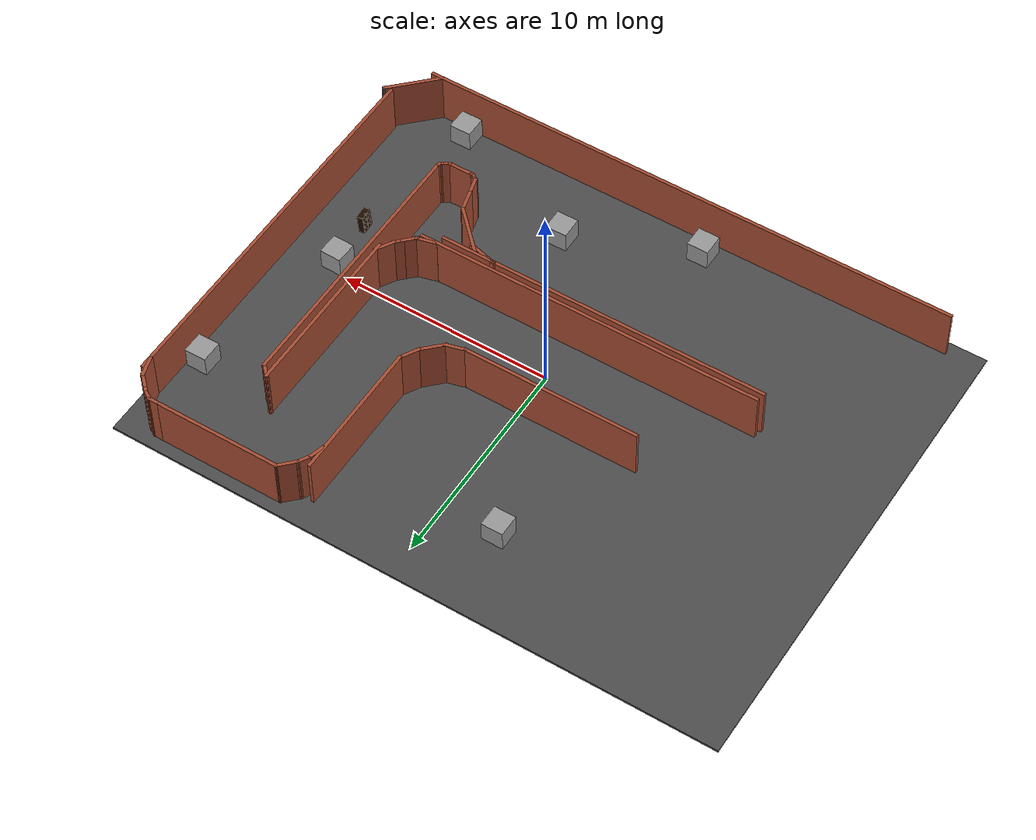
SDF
<sdf version="1.7">
 <world name="default">
  <model name="asphalt_plane">
   <static>1</static>
   <link name="link">
    <collision name="collision"><geometry><box><size>28.54 22.04 0.1</size></box></geometry></collision>
    <visual name="visual">
     <cast_shadows>0</cast_shadows>
     <geometry><box><size>28.54 22.04 0.1</size></box></geometry>
     <material>
      <script>
       <uri>model://asphalt_plane/materials/scripts</uri>
       <uri>model://asphalt_plane/materials/textures</uri>
       <name>vrc/asphalt</name>
      </script>
     </material>
    </visual>
   </link>
   <pose>-0.714703 0.532706 0 0 -0 0</pose>
  </model>
  <model name="unit_box_clone_0">
   <pose>-2.13913 -9.08253 0.550002 -4e-06 -0 0.000121</pose>
   <link name="link">
    <inertial>
     <mass>1</mass>
     <inertia>
      <ixx>0.166667</ixx>
      <ixy>0</ixy>
      <ixz>0</ixz>
      <iyy>0.166667</iyy>
      <iyz>0</iyz>
      <izz>0.166667</izz>
     </inertia>
    </inertial>
    <collision name="collision"><geometry><box><size>1 1 1</size></box></geometry></collision>
    <visual name="visual">
     <geometry><box><size>1 1 1</size></box></geometry>
     <material>
      <script><name>Gazebo/Grey</name><uri>file://media/materials/scripts/gazebo.material</uri></script>
     </material>
    </visual>
   </link>
  </model>
  <model name="unit_box_clone_2">
   <pose>10.7393 -0.480068 0.549996 0 9e-06 -0.029689</pose>
   <link name="link">
    <inertial>
     <mass>1</mass>
     <inertia>
      <ixx>0.166667</ixx>
      <ixy>0</ixy>
      <ixz>0</ixz>
      <iyy>0.166667</iyy>
      <iyz>0</iyz>
      <izz>0.166667</izz>
     </inertia>
    </inertial>
    <collision name="collision"><geometry><box><size>1 1 1</size></box></geometry></collision>
    <visual name="visual">
     <geometry><box><size>1 1 1</size></box></geometry>
     <material>
      <script><name>Gazebo/Grey</name><uri>file://media/materials/scripts/gazebo.material</uri></script>
     </material>
    </visual>
   </link>
  </model>
  <model name="unit_box_clone_5">
   <pose>10.0295 -9.35501 0.55 0 -0 5.5e-05</pose>
   <link name="link">
    <inertial>
     <mass>1</mass>
     <inertia>
      <ixx>0.166667</ixx>
      <ixy>0</ixy>
      <ixz>0</ixz>
      <iyy>0.166667</iyy>
      <iyz>0</iyz>
      <izz>0.166667</izz>
     </inertia>
    </inertial>
    <collision name="collision"><geometry><box><size>1 1 1</size></box></geometry></collision>
    <visual name="visual">
     <geometry><box><size>1 1 1</size></box></geometry>
     <material>
      <script><name>Gazebo/Grey</name><uri>file://media/materials/scripts/gazebo.material</uri></script>
     </material>
    </visual>
   </link>
  </model>
  <model name="unit_box_clone_9">
   <pose>12.4219 6.83816 0.550002 -4e-06 -0 0.000108</pose>
   <link name="link">
    <inertial>
     <mass>1</mass>
     <inertia>
      <ixx>0.166667</ixx>
      <ixy>0</ixy>
      <ixz>0</ixz>
      <iyy>0.166667</iyy>
      <iyz>0</iyz>
      <izz>0.166667</izz>
     </inertia>
    </inertial>
    <collision name="collision"><geometry><box><size>1 1 1</size></box></geometry></collision>
    <visual name="visual">
     <geometry><box><size>1 1 1</size></box></geometry>
     <material>
      <script><name>Gazebo/Grey</name><uri>file://media/materials/scripts/gazebo.material</uri></script>
     </material>
    </visual>
   </link>
  </model>
  <model name="unit_box_clone_11">
   <pose>-2.61689 7.65173 0.550002 -4e-06 -0 0.000139</pose>
   <link name="link">
    <inertial>
     <mass>1</mass>
     <inertia>
      <ixx>0.166667</ixx>
      <ixy>0</ixy>
      <ixz>0</ixz>
      <iyy>0.166667</iyy>
      <iyz>0</iyz>
      <izz>0.166667</izz>
     </inertia>
    </inertial>
    <collision name="collision"><geometry><box><size>1 1 1</size></box></geometry></collision>
    <visual name="visual">
     <geometry><box><size>1 1 1</size></box></geometry>
     <material>
      <script><name>Gazebo/Grey</name><uri>file://media/materials/scripts/gazebo.material</uri></script>
     </material>
    </visual>
   </link>
  </model>
  <model name="unit_box_clone_clone_clone">
   <pose>3.42763 -6.6926 0.550002 -4e-06 0 0.010133</pose>
   <link name="link">
    <inertial>
     <mass>1</mass>
     <inertia>
      <ixx>0.166667</ixx>
      <ixy>0</ixy>
      <ixz>0</ixz>
      <iyy>0.166667</iyy>
      <iyz>0</iyz>
      <izz>0.166667</izz>
     </inertia>
    </inertial>
    <collision name="collision"><geometry><box><size>1 1 1</size></box></geometry></collision>
    <visual name="visual">
     <geometry><box><size>1 1 1</size></box></geometry>
     <material>
      <script><name>Gazebo/Grey</name><uri>file://media/materials/scripts/gazebo.material</uri></script>
     </material>
    </visual>
   </link>
  </model>
  <model name="Untitled_0">
   <pose>2.17229 1.41798 0 0 -0 0</pose>
   <link name="Wall_100">
    <collision name="Wall_100_Collision">
     <geometry><box><size>0.5 0.15 2.5</size></box></geometry>
     <pose>0 0 1.25 0 -0 0</pose>
    </collision>
    <visual name="Wall_100_Visual">
     <pose>0 0 1.25 0 -0 0</pose>
     <geometry><box><size>0.5 0.15 2.5</size></box></geometry>
     <material>
      <script><uri>file://media/materials/scripts/gazebo.material</uri><name>Gazebo/Bricks</name></script>
      <ambient>1 1 1 1</ambient>
     </material>
     <meta><layer>0</layer></meta>
    </visual>
    <pose>9.51531 9.51082 0 0 -0 0</pose>
   </link>
   <link name="Wall_101">
    <collision name="Wall_101_Collision">
     <geometry><box><size>0.5 0.15 2.5</size></box></geometry>
     <pose>0 0 1.25 0 -0 0</pose>
    </collision>
    <visual name="Wall_101_Visual">
     <pose>0 0 1.25 0 -0 0</pose>
     <geometry><box><size>0.5 0.15 2.5</size></box></geometry>
     <material>
      <script><uri>file://media/materials/scripts/gazebo.material</uri><name>Gazebo/Bricks</name></script>
      <ambient>1 1 1 1</ambient>
     </material>
     <meta><layer>0</layer></meta>
    </visual>
    <pose>9.84186 9.42332 0 0 -0 -0.523599</pose>
   </link>
   <link name="Wall_102">
    <collision name="Wall_102_Collision">
     <geometry><box><size>0.5 0.15 2.5</size></box></geometry>
     <pose>0 0 1.25 0 -0 0</pose>
    </collision>
    <visual name="Wall_102_Visual">
     <pose>0 0 1.25 0 -0 0</pose>
     <geometry><box><size>0.5 0.15 2.5</size></box></geometry>
     <material>
      <script><uri>file://media/materials/scripts/gazebo.material</uri><name>Gazebo/Bricks</name></script>
      <ambient>1 1 1 1</ambient>
     </material>
     <meta><layer>0</layer></meta>
    </visual>
    <pose>10.1172 9.21208 0 0 -0 -0.785398</pose>
   </link>
   <link name="Wall_103">
    <collision name="Wall_103_Collision">
     <geometry><box><size>0.75 0.15 2.5</size></box></geometry>
     <pose>0 0 1.25 0 -0 0</pose>
    </collision>
    <visual name="Wall_103_Visual">
     <pose>0 0 1.25 0 -0 0</pose>
     <geometry><box><size>0.75 0.15 2.5</size></box></geometry>
     <material>
      <script><uri>file://media/materials/scripts/gazebo.material</uri><name>Gazebo/Bricks</name></script>
      <ambient>1 1 1 1</ambient>
     </material>
     <meta><layer>0</layer></meta>
    </visual>
    <pose>10.453 8.8762 0 0 -0 -0.785398</pose>
   </link>
   <link name="Wall_104">
    <collision name="Wall_104_Collision">
     <geometry><box><size>1 0.15 2.5</size></box></geometry>
     <pose>0 0 1.25 0 -0 0</pose>
    </collision>
    <visual name="Wall_104_Visual">
     <pose>0 0 1.25 0 -0 0</pose>
     <geometry><box><size>1 0.15 2.5</size></box></geometry>
     <material>
      <script><uri>file://media/materials/scripts/gazebo.material</uri><name>Gazebo/Bricks</name></script>
      <ambient>1 1 1 1</ambient>
     </material>
     <meta><layer>0</layer></meta>
    </visual>
    <pose>10.7752 8.25355 0 0 -0 -1.309</pose>
   </link>
   <link name="Wall_73">
    <collision name="Wall_73_Collision">
     <geometry><box><size>16.25 0.15 2.5</size></box></geometry>
     <pose>0 0 1.25 0 -0 0</pose>
    </collision>
    <visual name="Wall_73_Visual">
     <pose>0 0 1.25 0 -0 0</pose>
     <geometry><box><size>16.25 0.15 2.5</size></box></geometry>
     <material>
      <script><uri>file://media/materials/scripts/gazebo.material</uri><name>Gazebo/Bricks</name></script>
      <ambient>1 1 1 1</ambient>
     </material>
     <meta><layer>0</layer></meta>
    </visual>
    <pose>-2.86052 -3.41043 0 0 -0 0</pose>
   </link>
   <link name="Wall_76">
    <collision name="Wall_76_Collision">
     <geometry><box><size>8.25 0.15 2.5</size></box></geometry>
     <pose>0 0 1.25 0 -0 0</pose>
    </collision>
    <visual name="Wall_76_Visual">
     <pose>0 0 1.25 0 -0 0</pose>
     <geometry><box><size>8.25 0.15 2.5</size></box></geometry>
     <material>
      <script><uri>file://media/materials/scripts/gazebo.material</uri><name>Gazebo/Bricks</name></script>
      <ambient>1 1 1 1</ambient>
     </material>
     <meta><layer>0</layer></meta>
    </visual>
    <pose>-3.69073 0.69136 0 0 -0 0</pose>
   </link>
   <link name="Wall_78">
    <collision name="Wall_78_Collision">
     <geometry><box><size>1 0.15 2.5</size></box></geometry>
     <pose>0 0 1.25 0 -0 0</pose>
    </collision>
    <visual name="Wall_78_Visual">
     <pose>0 0 1.25 0 -0 0</pose>
     <geometry><box><size>1 0.15 2.5</size></box></geometry>
     <material>
      <script><uri>file://media/materials/scripts/gazebo.material</uri><name>Gazebo/Bricks</name></script>
      <ambient>1 1 1 1</ambient>
     </material>
     <meta><layer>0</layer></meta>
    </visual>
    <pose>0.769793 0.801358 0 0 -0 0.261799</pose>
   </link>
   <link name="Wall_79">
    <collision name="Wall_79_Collision">
     <geometry><box><size>1.25 0.15 2.5</size></box></geometry>
     <pose>0 0 1.25 0 -0 0</pose>
    </collision>
    <visual name="Wall_79_Visual">
     <pose>0 0 1.25 0 -0 0</pose>
     <geometry><box><size>1.25 0.15 2.5</size></box></geometry>
     <material>
      <script><uri>file://media/materials/scripts/gazebo.material</uri><name>Gazebo/Bricks</name></script>
      <ambient>1 1 1 1</ambient>
     </material>
     <meta><layer>0</layer></meta>
    </visual>
    <pose>1.56922 1.30027 0 0 -0 0.785398</pose>
   </link>
   <link name="Wall_80">
    <collision name="Wall_80_Collision">
     <geometry><box><size>1 0.15 2.5</size></box></geometry>
     <pose>0 0 1.25 0 -0 0</pose>
    </collision>
    <visual name="Wall_80_Visual">
     <pose>0 0 1.25 0 -0 0</pose>
     <geometry><box><size>1 0.15 2.5</size></box></geometry>
     <material>
      <script><uri>file://media/materials/scripts/gazebo.material</uri><name>Gazebo/Bricks</name></script>
      <ambient>1 1 1 1</ambient>
     </material>
     <meta><layer>0</layer></meta>
    </visual>
    <pose>2.17063 2.05723 0 0 -0 1.0472</pose>
   </link>
   <link name="Wall_81">
    <collision name="Wall_81_Collision">
     <geometry><box><size>6.5 0.15 2.5</size></box></geometry>
     <pose>0 0 1.25 0 -0 0</pose>
    </collision>
    <visual name="Wall_81_Visual">
     <pose>0 0 1.25 0 -0 0</pose>
     <geometry><box><size>6.5 0.15 2.5</size></box></geometry>
     <material>
      <script><uri>file://media/materials/scripts/gazebo.material</uri><name>Gazebo/Bricks</name></script>
      <ambient>1 1 1 1</ambient>
     </material>
     <meta><layer>0</layer></meta>
    </visual>
    <pose>2.38313 5.6003 0 0 -0 1.5708</pose>
   </link>
   <link name="Wall_83">
    <collision name="Wall_83_Collision">
     <geometry><box><size>8.25 0.15 2.5</size></box></geometry>
     <pose>0 0 1.25 0 -0 0</pose>
    </collision>
    <visual name="Wall_83_Visual">
     <pose>0 0 1.25 0 -0 0</pose>
     <geometry><box><size>8.25 0.15 2.5</size></box></geometry>
     <material>
      <script><uri>file://media/materials/scripts/gazebo.material</uri><name>Gazebo/Bricks</name></script>
      <ambient>1 1 1 1</ambient>
     </material>
     <meta><layer>0</layer></meta>
    </visual>
    <pose>6.40756 2.01956 0 0 -0 -1.5708</pose>
   </link>
   <link name="Wall_87">
    <collision name="Wall_87_Collision">
     <geometry><box><size>1 0.15 2.5</size></box></geometry>
     <pose>0 0 1.25 0 -0 0</pose>
    </collision>
    <visual name="Wall_87_Visual">
     <pose>0 0 1.25 0 -0 0</pose>
     <geometry><box><size>1 0.15 2.5</size></box></geometry>
     <material>
      <script><uri>file://media/materials/scripts/gazebo.material</uri><name>Gazebo/Bricks</name></script>
      <ambient>1 1 1 1</ambient>
     </material>
     <meta><layer>0</layer></meta>
    </visual>
    <pose>4.90949 -3.27284 0 0 -0 0.261799</pose>
   </link>
   <link name="Wall_88">
    <collision name="Wall_88_Collision">
     <geometry><box><size>0.75 0.15 2.5</size></box></geometry>
     <pose>0 0 1.25 0 -0 0</pose>
    </collision>
    <visual name="Wall_88_Visual">
     <pose>0 0 1.25 0 -0 0</pose>
     <geometry><box><size>0.75 0.15 2.5</size></box></geometry>
     <material>
      <script><uri>file://media/materials/scripts/gazebo.material</uri><name>Gazebo/Bricks</name></script>
      <ambient>1 1 1 1</ambient>
     </material>
     <meta><layer>0</layer></meta>
    </visual>
    <pose>5.53214 -2.95071 0 0 -0 0.785398</pose>
   </link>
   <link name="Wall_89">
    <collision name="Wall_89_Collision">
     <geometry><box><size>0.5 0.15 2.5</size></box></geometry>
     <pose>0 0 1.25 0 -0 0</pose>
    </collision>
    <visual name="Wall_89_Visual">
     <pose>0 0 1.25 0 -0 0</pose>
     <geometry><box><size>0.5 0.15 2.5</size></box></geometry>
     <material>
      <script><uri>file://media/materials/scripts/gazebo.material</uri><name>Gazebo/Bricks</name></script>
      <ambient>1 1 1 1</ambient>
     </material>
     <meta><layer>0</layer></meta>
    </visual>
    <pose>5.86801 -2.61483 0 0 -0 0.785398</pose>
   </link>
   <link name="Wall_90">
    <collision name="Wall_90_Collision">
     <geometry><box><size>1 0.15 2.5</size></box></geometry>
     <pose>0 0 1.25 0 -0 0</pose>
    </collision>
    <visual name="Wall_90_Visual">
     <pose>0 0 1.25 0 -0 0</pose>
     <geometry><box><size>1 0.15 2.5</size></box></geometry>
     <material>
      <script><uri>file://media/materials/scripts/gazebo.material</uri><name>Gazebo/Bricks</name></script>
      <ambient>1 1 1 1</ambient>
     </material>
     <meta><layer>0</layer></meta>
    </visual>
    <pose>6.20426 -2.12303 0 0 -0 1.0472</pose>
   </link>
   <link name="Wall_92">
    <collision name="Wall_92_Collision">
     <geometry><box><size>18 0.15 2.5</size></box></geometry>
     <pose>0 0 1.2495 0 -0 0</pose>
    </collision>
    <visual name="Wall_92_Visual">
     <pose>0 0 1.2495 0 -0 0</pose>
     <geometry><box><size>18 0.15 2.5</size></box></geometry>
     <material>
      <script><uri>file://media/materials/scripts/gazebo.material</uri><name>Gazebo/Bricks</name></script>
      <ambient>1 1 1 1</ambient>
     </material>
     <meta><layer>0</layer></meta>
    </visual>
    <pose>10.9105 -0.616886 0 0 -0 -1.5708</pose>
   </link>
   <link name="Wall_95">
    <collision name="Wall_95_Collision">
     <geometry><box><size>0.75 0.15 2.5</size></box></geometry>
     <pose>0 0 1.25 0 -0 0</pose>
    </collision>
    <visual name="Wall_95_Visual">
     <pose>0 0 1.25 0 -0 0</pose>
     <geometry><box><size>0.75 0.15 2.5</size></box></geometry>
     <material>
      <script><uri>file://media/materials/scripts/gazebo.material</uri><name>Gazebo/Bricks</name></script>
      <ambient>1 1 1 1</ambient>
     </material>
     <meta><layer>0</layer></meta>
    </visual>
    <pose>2.51162 8.10039 0 0 -0 1.309</pose>
   </link>
   <link name="Wall_96">
    <collision name="Wall_96_Collision">
     <geometry><box><size>0.75 0.15 2.5</size></box></geometry>
     <pose>0 0 1.25 0 -0 0</pose>
    </collision>
    <visual name="Wall_96_Visual">
     <pose>0 0 1.25 0 -0 0</pose>
     <geometry><box><size>0.75 0.15 2.5</size></box></geometry>
     <material>
      <script><uri>file://media/materials/scripts/gazebo.material</uri><name>Gazebo/Bricks</name></script>
      <ambient>1 1 1 1</ambient>
     </material>
     <meta><layer>0</layer></meta>
    </visual>
    <pose>2.73927 8.64997 0 0 -0 1.0472</pose>
   </link>
   <link name="Wall_98">
    <collision name="Wall_98_Collision">
     <geometry><box><size>1 0.15 2.5</size></box></geometry>
     <pose>0 0 1.25 0 -0 0</pose>
    </collision>
    <visual name="Wall_98_Visual">
     <pose>0 0 1.25 0 -0 0</pose>
     <geometry><box><size>1 0.15 2.5</size></box></geometry>
     <material>
      <script><uri>file://media/materials/scripts/gazebo.material</uri><name>Gazebo/Bricks</name></script>
      <ambient>1 1 1 1</ambient>
     </material>
     <meta><layer>0</layer></meta>
    </visual>
    <pose>3.18979 9.2103 0 0 -0 0.785398</pose>
   </link>
   <link name="Wall_99">
    <collision name="Wall_99_Collision">
     <geometry><box><size>6 0.15 2.5</size></box></geometry>
     <pose>0 0 1.25 0 -0 0</pose>
    </collision>
    <visual name="Wall_99_Visual">
     <pose>0 0 1.25 0 -0 0</pose>
     <geometry><box><size>6 0.15 2.5</size></box></geometry>
     <material>
      <script><uri>file://media/materials/scripts/gazebo.material</uri><name>Gazebo/Bricks</name></script>
      <ambient>1 1 1 1</ambient>
     </material>
     <meta><layer>0</layer></meta>
    </visual>
    <pose>6.41531 9.51082 0 0 -0 0</pose>
   </link>
   <static>1</static>
  </model>
  <model name="Untitled">
   <pose>-1.155 -1.2225 0 0 -0 0</pose>
   <link name="Wall_0">
    <collision name="Wall_0_Collision">
     <geometry><box><size>15.5 0.15 2.5</size></box></geometry>
     <pose>0 0 1.25 0 -0 0</pose>
    </collision>
    <visual name="Wall_0_Visual">
     <pose>0 0 1.25 0 -0 0</pose>
     <geometry><box><size>15.5 0.15 2.5</size></box></geometry>
     <material>
      <script><uri>file://media/materials/scripts/gazebo.material</uri><name>Gazebo/Bricks</name></script>
      <ambient>1 1 1 1</ambient>
     </material>
     <meta><layer>0</layer></meta>
    </visual>
    <pose>-0 -1.1475 0 0 -0 0</pose>
   </link>
   <static>1</static>
  </model>
  <model name="Untitled_1">
   <pose>4.54374 0.998214 0 0 -0 0</pose>
   <link name="Wall_3">
    <collision name="Wall_3_Collision">
     <geometry><box><size>12.75 0.15 2.5</size></box></geometry>
     <pose>0 0 1.25 0 -0 0</pose>
    </collision>
    <visual name="Wall_3_Visual">
     <pose>0 0 1.25 0 -0 0</pose>
     <geometry><box><size>12.75 0.15 2.5</size></box></geometry>
     <material>
      <script><uri>file://media/materials/scripts/gazebo.material</uri><name>Gazebo/Bricks</name></script>
      <ambient>1 1 1 1</ambient>
     </material>
     <meta><layer>0</layer></meta>
    </visual>
    <pose>4.43768 -0.227665 0 0 -0 1.5708</pose>
   </link>
   <link name="Wall_5">
    <collision name="Wall_5_Collision">
     <geometry><box><size>0.75 0.15 2.5</size></box></geometry>
     <pose>0 0 1.25 0 -0 0</pose>
    </collision>
    <visual name="Wall_5_Visual">
     <pose>0 0 1.25 0 -0 0</pose>
     <geometry><box><size>0.75 0.15 2.5</size></box></geometry>
     <material>
      <script><uri>file://media/materials/scripts/gazebo.material</uri><name>Gazebo/Bricks</name></script>
      <ambient>1 1 1 1</ambient>
     </material>
     <meta><layer>0</layer></meta>
    </visual>
    <pose>4.22555 6.28447 0 0 -0 2.35619</pose>
   </link>
   <static>1</static>
  </model>
  <model name="6_Cube_StorageE">
   <link name="Wall_0">
    <pose>0 0 0.01 0 -0 0</pose>
    <inertial>
     <mass>1.6201</mass>
     <inertia><ixx>0.0119</ixx><iyy>0.0631</iyy><izz>0.0513</izz><ixy>0</ixy><ixz>0</ixz><iyz>0</iyz></inertia>
    </inertial>
    <collision name="Wall_0_Collision"><geometry><box><size>0.616 0.296 0.02</size></box></geometry></collision>
    <visual name="Wall_0_Visual">
     <geometry><box><size>0.616 0.296 0.02</size></box></geometry>
     <material>
      <script><uri>file://media/materials/scripts/gazebo.material</uri><name>Gazebo/Grey</name></script>
      <ambient>0.105882 0.0509804 0 1</ambient>
     </material>
    </visual>
   </link>
   <joint name="0_2" type="fixed">
    <pose>-0.308 0 0 0 -0 0</pose>
    <parent>Wall_2</parent>
    <child>Wall_0</child>
    <axis><xyz>1 0 0</xyz><limit><lower>-1e+16</lower><upper>1e+16</upper></limit></axis>
   </joint>
   <joint name="0_12" type="fixed">
    <parent>Wall_12</parent>
    <child>Wall_0</child>
    <axis><xyz>0 0 1</xyz><limit><lower>-1e+16</lower><upper>1e+16</upper></limit></axis>
   </joint>
   <joint name="0_4" type="fixed">
    <pose>0.308 0 0 0 -0 0</pose>
    <parent>Wall_4</parent>
    <child>Wall_0</child>
    <axis><xyz>1 0 0</xyz><limit><lower>-1e+16</lower><upper>1e+16</upper></limit></axis>
   </joint>
   <link name="Wall_10">
    <pose>0 0 0.61 0 -0 0</pose>
    <inertial>
     <mass>1.6201</mass>
     <inertia><ixx>0.0119</ixx><iyy>0.0631</iyy><izz>0.0513</izz><ixy>0</ixy><ixz>0</ixz><iyz>0</iyz></inertia>
    </inertial>
    <collision name="Wall_10_Collision"><geometry><box><size>0.616 0.296 0.02</size></box></geometry></collision>
    <visual name="Wall_10_Visual">
     <geometry><box><size>0.616 0.296 0.02</size></box></geometry>
     <material>
      <script><uri>file://media/materials/scripts/gazebo.material</uri><name>Gazebo/Grey</name></script>
      <ambient>0.105882 0.0509804 0 1</ambient>
     </material>
    </visual>
   </link>
   <joint name="10_2" type="fixed">
    <pose>-0.308 0 0 0 -0 0</pose>
    <parent>Wall_2</parent>
    <child>Wall_10</child>
    <axis><xyz>1 0 0</xyz><limit><lower>-1e+16</lower><upper>1e+16</upper></limit></axis>
   </joint>
   <joint name="10_12" type="fixed">
    <parent>Wall_12</parent>
    <child>Wall_10</child>
    <axis><xyz>0 0 1</xyz><limit><lower>-1e+16</lower><upper>1e+16</upper></limit></axis>
   </joint>
   <joint name="10_4" type="fixed">
    <pose>0.308 0 0 0 -0 0</pose>
    <parent>Wall_4</parent>
    <child>Wall_10</child>
    <axis><xyz>1 0 0</xyz><limit><lower>-1e+16</lower><upper>1e+16</upper></limit></axis>
   </joint>
   <link name="Wall_12">
    <pose>0 0 0.4575 0 -0 0</pose>
    <inertial>
     <mass>2.4065</mass>
     <inertia><ixx>0.0177</ixx><iyy>0.1855</iyy><izz>0.168</izz><ixy>0</ixy><ixz>0</ixz><iyz>0</iyz></inertia>
    </inertial>
    <collision name="Wall_12_Collision"><geometry><box><size>0.02 0.296 0.915</size></box></geometry></collision>
    <visual name="Wall_12_Visual">
     <geometry><box><size>0.02 0.296 0.915</size></box></geometry>
     <material>
      <script><uri>file://media/materials/scripts/gazebo.material</uri><name>Gazebo/Grey</name></script>
      <ambient>0.105882 0.0509804 0 1</ambient>
     </material>
    </visual>
   </link>
   <link name="Wall_2">
    <pose>-0.298 0 0.4575 0 -0 0</pose>
    <inertial>
     <mass>2.4065</mass>
     <inertia><ixx>0.0177</ixx><iyy>0.1855</iyy><izz>0.168</izz><ixy>0</ixy><ixz>0</ixz><iyz>0</iyz></inertia>
    </inertial>
    <collision name="Wall_2_Collision"><geometry><box><size>0.02 0.296 0.915</size></box></geometry></collision>
    <visual name="Wall_2_Visual">
     <geometry><box><size>0.02 0.296 0.915</size></box></geometry>
     <material>
      <script><uri>file://media/materials/scripts/gazebo.material</uri><name>Gazebo/Grey</name></script>
      <ambient>0.105882 0.0509804 0 1</ambient>
     </material>
    </visual>
   </link>
   <link name="Wall_4">
    <pose>0.298 0 0.4575 0 -0 0</pose>
    <inertial>
     <mass>2.4065</mass>
     <inertia><ixx>0.0177</ixx><iyy>0.1855</iyy><izz>0.168</izz><ixy>0</ixy><ixz>0</ixz><iyz>0</iyz></inertia>
    </inertial>
    <collision name="Wall_4_Collision"><geometry><box><size>0.02 0.296 0.915</size></box></geometry></collision>
    <visual name="Wall_4_Visual">
     <geometry><box><size>0.02 0.296 0.915</size></box></geometry>
     <material>
      <script><uri>file://media/materials/scripts/gazebo.material</uri><name>Gazebo/Grey</name></script>
      <ambient>0.105882 0.0509804 0 1</ambient>
     </material>
    </visual>
   </link>
   <link name="Wall_6">
    <pose>0 0 0.905 0 -0 0</pose>
    <inertial>
     <mass>1.6201</mass>
     <inertia><ixx>0.0119</ixx><iyy>0.0631</iyy><izz>0.0513</izz><ixy>0</ixy><ixz>0</ixz><iyz>0</iyz></inertia>
    </inertial>
    <collision name="Wall_6_Collision"><geometry><box><size>0.616 0.296 0.02</size></box></geometry></collision>
    <visual name="Wall_6_Visual">
     <geometry><box><size>0.616 0.296 0.02</size></box></geometry>
     <material>
      <script><uri>file://media/materials/scripts/gazebo.material</uri><name>Gazebo/Grey</name></script>
      <ambient>0.105882 0.0509804 0 1</ambient>
     </material>
    </visual>
   </link>
   <joint name="6_2" type="fixed">
    <pose>-0.308 0 0 0 -0 0</pose>
    <parent>Wall_2</parent>
    <child>Wall_6</child>
    <axis><xyz>2 0 0</xyz><limit><lower>-1e+16</lower><upper>1e+16</upper></limit></axis>
   </joint>
   <joint name="6_12" type="fixed">
    <parent>Wall_12</parent>
    <child>Wall_6</child>
    <axis><xyz>0 0 1</xyz><limit><lower>-1e+16</lower><upper>1e+16</upper></limit></axis>
   </joint>
   <joint name="6_4" type="fixed">
    <pose>0.308 0 0 0 -0 0</pose>
    <parent>Wall_4</parent>
    <child>Wall_6</child>
    <axis><xyz>1 0 0</xyz><limit><lower>-1e+16</lower><upper>1e+16</upper></limit></axis>
   </joint>
   <link name="Wall_8">
    <pose>0 0 0.305 0 -0 0</pose>
    <inertial>
     <mass>1.6201</mass>
     <inertia><ixx>0.0119</ixx><iyy>0.0631</iyy><izz>0.0513</izz><ixy>0</ixy><ixz>0</ixz><iyz>0</iyz></inertia>
    </inertial>
    <collision name="Wall_8_Collision"><geometry><box><size>0.616 0.296 0.02</size></box></geometry></collision>
    <visual name="Wall_8_Visual">
     <geometry><box><size>0.616 0.296 0.02</size></box></geometry>
     <material>
      <script><uri>file://media/materials/scripts/gazebo.material</uri><name>Gazebo/Grey</name></script>
      <ambient>0.105882 0.0509804 0 1</ambient>
     </material>
    </visual>
   </link>
   <joint name="8_2" type="fixed">
    <pose>-0.308 0 0 0 -0 0</pose>
    <parent>Wall_2</parent>
    <child>Wall_8</child>
    <axis><xyz>1 0 0</xyz><limit><lower>-1e+16</lower><upper>1e+16</upper></limit></axis>
   </joint>
   <joint name="8_12" type="fixed">
    <parent>Wall_12</parent>
    <child>Wall_8</child>
    <axis><xyz>0 0 1</xyz><limit><lower>-1e+16</lower><upper>1e+16</upper></limit></axis>
   </joint>
   <joint name="8_4" type="fixed">
    <pose>0.308 0 0 0 -0 0</pose>
    <parent>Wall_4</parent>
    <child>Wall_8</child>
    <axis><xyz>1 0 0</xyz><limit><lower>-1e+16</lower><upper>1e+16</upper></limit></axis>
   </joint>
   <static>1</static>
   <pose>10.882 -2.74407 0.037123 0.078821 -0.005852 1.64475</pose>
  </model>
  <model name="Untitled_2">
   <pose>0.07367 -5.01823 0 0 -0 0</pose>
   <link name="Wall_0">
    <collision name="Wall_0_Collision">
     <geometry><box><size>25.5 0.15 2.5</size></box></geometry>
     <pose>0 0 1.25 0 -0 0</pose>
    </collision>
    <visual name="Wall_0_Visual">
     <pose>0 0 1.25 0 -0 0</pose>
     <geometry><box><size>25.5 0.15 2.5</size></box></geometry>
     <material>
      <script><uri>file://media/materials/scripts/gazebo.material</uri><name>Gazebo/Bricks</name></script>
      <ambient>1 1 1 1</ambient>
     </material>
     <meta><layer>0</layer></meta>
    </visual>
    <pose>-0.693877 -4.91181 0 0 -0 0</pose>
   </link>
   <link name="Wall_11">
    <collision name="Wall_11_Collision">
     <geometry><box><size>0.5 0.15 2.5</size></box></geometry>
     <pose>0 0 1.25 0 -0 0</pose>
    </collision>
    <visual name="Wall_11_Visual">
     <pose>0 0 1.25 0 -0 0</pose>
     <geometry><box><size>0.5 0.15 2.5</size></box></geometry>
     <material>
      <script><uri>file://media/materials/scripts/gazebo.material</uri><name>Gazebo/Bricks</name></script>
      <ambient>1 1 1 1</ambient>
     </material>
     <meta><layer>0</layer></meta>
    </visual>
    <pose>7.25302 -0.843593 0 0 -0 2.61799</pose>
   </link>
   <link name="Wall_12">
    <collision name="Wall_12_Collision">
     <geometry><box><size>0.75 0.15 2.5</size></box></geometry>
     <pose>0 0 1.25 0 -0 0</pose>
    </collision>
    <visual name="Wall_12_Visual">
     <pose>0 0 1.25 0 -0 0</pose>
     <geometry><box><size>0.75 0.15 2.5</size></box></geometry>
     <material>
      <script><uri>file://media/materials/scripts/gazebo.material</uri><name>Gazebo/Bricks</name></script>
      <ambient>1 1 1 1</ambient>
     </material>
     <meta><layer>0</layer></meta>
    </visual>
    <pose>7.02381 -0.466315 0 0 -0 1.8326</pose>
   </link>
   <link name="Wall_13">
    <collision name="Wall_13_Collision">
     <geometry><box><size>1.25 0.15 2.5</size></box></geometry>
     <pose>0 0 1.25 0 -0 0</pose>
    </collision>
    <visual name="Wall_13_Visual">
     <pose>0 0 1.25 0 -0 0</pose>
     <geometry><box><size>1.25 0.15 2.5</size></box></geometry>
     <material>
      <script><uri>file://media/materials/scripts/gazebo.material</uri><name>Gazebo/Bricks</name></script>
      <ambient>1 1 1 1</ambient>
     </material>
     <meta><layer>0</layer></meta>
    </visual>
    <pose>6.80382 0.354722 0 0 -0 1.8326</pose>
   </link>
   <link name="Wall_14">
    <collision name="Wall_14_Collision">
     <geometry><box><size>2.5 0.15 2.5</size></box></geometry>
     <pose>0 0 1.25 0 -0 0</pose>
    </collision>
    <visual name="Wall_14_Visual">
     <pose>0 0 1.25 0 -0 0</pose>
     <geometry><box><size>2.5 0.15 2.5</size></box></geometry>
     <material>
      <script><uri>file://media/materials/scripts/gazebo.material</uri><name>Gazebo/Bricks</name></script>
      <ambient>1 1 1 1</ambient>
     </material>
     <meta><layer>0</layer></meta>
    </visual>
    <pose>5.83062 1.71683 0 0 -0 2.35619</pose>
   </link>
   <link name="Wall_16">
    <collision name="Wall_16_Collision">
     <geometry><box><size>1.5 0.15 2.5</size></box></geometry>
     <pose>0 0 1.25 0 -0 0</pose>
    </collision>
    <visual name="Wall_16_Visual">
     <pose>0 0 1.25 0 -0 0</pose>
     <geometry><box><size>1.5 0.15 2.5</size></box></geometry>
     <material>
      <script><uri>file://media/materials/scripts/gazebo.material</uri><name>Gazebo/Bricks</name></script>
      <ambient>1 1 1 1</ambient>
     </material>
     <meta><layer>0</layer></meta>
    </visual>
    <pose>4.60207 2.52555 0 0 -0 2.87979</pose>
   </link>
   <link name="Wall_19">
    <collision name="Wall_19_Collision">
     <geometry><box><size>2.75 0.15 2.5</size></box></geometry>
     <pose>0 0 1.25 0 -0 0</pose>
    </collision>
    <visual name="Wall_19_Visual">
     <pose>0 0 1.25 0 -0 0</pose>
     <geometry><box><size>2.75 0.15 2.5</size></box></geometry>
     <material>
      <script><uri>file://media/materials/scripts/gazebo.material</uri><name>Gazebo/Bricks</name></script>
      <ambient>1 1 1 1</ambient>
     </material>
     <meta><layer>0</layer></meta>
    </visual>
    <pose>12.4186 -3.99292 0 0 -0 0.785398</pose>
   </link>
   <link name="Wall_20">
    <collision name="Wall_20_Collision">
     <geometry><box><size>0.15 0.15 2.5</size></box></geometry>
     <pose>0 0 1.25 0 -0 0</pose>
    </collision>
    <visual name="Wall_20_Visual">
     <pose>0 0 1.25 0 -0 0</pose>
     <geometry><box><size>0.15 0.15 2.5</size></box></geometry>
     <material>
      <script><uri>file://media/materials/scripts/gazebo.material</uri><name>Gazebo/Grey</name></script>
      <ambient>1 1 1 1</ambient>
     </material>
     <meta><layer>0</layer></meta>
    </visual>
    <pose>13.3378 -3.07368 0 0 -0 0</pose>
   </link>
   <link name="Wall_3">
    <collision name="Wall_3_Collision">
     <geometry><box><size>1.25 0.15 2.5</size></box></geometry>
     <pose>0 0 1.25 0 -0 0</pose>
    </collision>
    <visual name="Wall_3_Visual">
     <pose>0 0 1.25 0 -0 0</pose>
     <geometry><box><size>1.25 0.15 2.5</size></box></geometry>
     <material>
      <script><uri>file://media/materials/scripts/gazebo.material</uri><name>Gazebo/Bricks</name></script>
      <ambient>1 1 1 1</ambient>
     </material>
     <meta><layer>0</layer></meta>
    </visual>
    <pose>7.95457 -0.931093 0 0 -0 3.14159</pose>
   </link>
   <link name="Wall_5">
    <collision name="Wall_5_Collision">
     <geometry><box><size>0.5 0.15 2.5</size></box></geometry>
     <pose>0 0 1.25 0 -0 0</pose>
    </collision>
    <visual name="Wall_5_Visual">
     <pose>0 0 1.25 0 -0 0</pose>
     <geometry><box><size>0.5 0.15 2.5</size></box></geometry>
     <material>
      <script><uri>file://media/materials/scripts/gazebo.material</uri><name>Gazebo/Bricks</name></script>
      <ambient>1 1 1 1</ambient>
     </material>
     <meta><layer>0</layer></meta>
    </visual>
    <pose>8.65612 -0.843593 0 0 -0 0.523599</pose>
   </link>
   <link name="Wall_6">
    <collision name="Wall_6_Collision">
     <geometry><box><size>0.25 0.15 2.5</size></box></geometry>
     <pose>0 0 1.25 0 -0 0</pose>
    </collision>
    <visual name="Wall_6_Visual">
     <pose>0 0 1.25 0 -0 0</pose>
     <geometry><box><size>0.25 0.15 2.5</size></box></geometry>
     <material>
      <script><uri>file://media/materials/scripts/gazebo.material</uri><name>Gazebo/Bricks</name></script>
      <ambient>1 1 1 1</ambient>
     </material>
     <meta><layer>0</layer></meta>
    </visual>
    <pose>8.84303 -0.720738 0 0 -0 0.785398</pose>
   </link>
   <link name="Wall_7">
    <collision name="Wall_7_Collision">
     <geometry><box><size>0.25 0.15 2.5</size></box></geometry>
     <pose>0 0 1.25 0 -0 0</pose>
    </collision>
    <visual name="Wall_7_Visual">
     <pose>0 0 1.25 0 -0 0</pose>
     <geometry><box><size>0.25 0.15 2.5</size></box></geometry>
     <material>
      <script><uri>file://media/materials/scripts/gazebo.material</uri><name>Gazebo/Bricks</name></script>
      <ambient>1 1 1 1</ambient>
     </material>
     <meta><layer>0</layer></meta>
    </visual>
    <pose>8.89133 -0.637086 0 0 -0 1.309</pose>
   </link>
   <link name="Wall_9">
    <collision name="Wall_9_Collision">
     <geometry><box><size>0.25 0.15 2.5</size></box></geometry>
     <pose>0 0 1.25 0 -0 0</pose>
    </collision>
    <visual name="Wall_9_Visual">
     <pose>0 0 1.25 0 -0 0</pose>
     <geometry><box><size>0.25 0.15 2.5</size></box></geometry>
     <material>
      <script><uri>file://media/materials/scripts/gazebo.material</uri><name>Gazebo/Bricks</name></script>
      <ambient>1 1 1 1</ambient>
     </material>
     <meta><layer>0</layer></meta>
    </visual>
    <pose>7.35627 -0.918152 0 0 -0 2.87979</pose>
   </link>
   <static>1</static>
  </model>
 </world>
</sdf>
